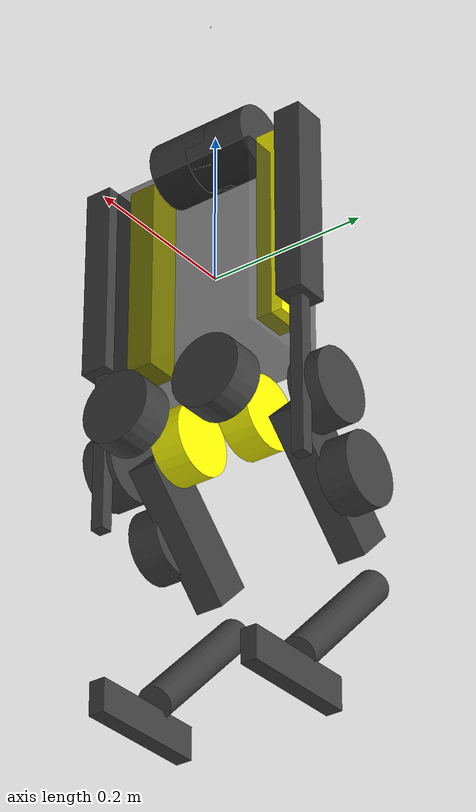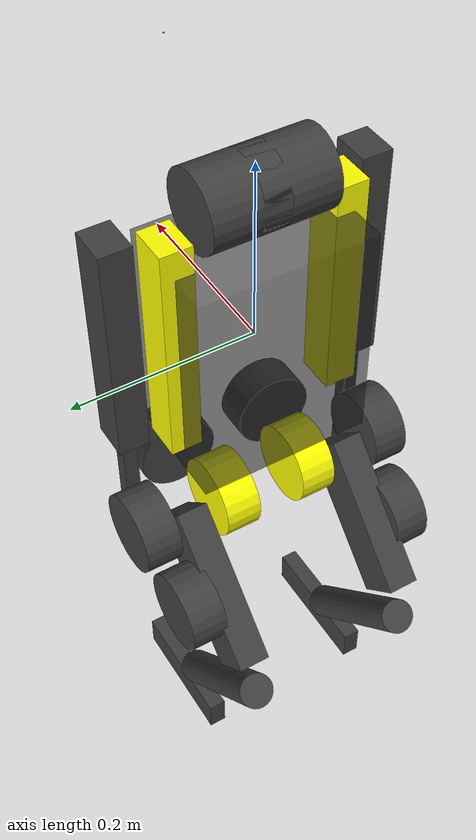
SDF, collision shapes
<sdf version="1.8">

    <model name='hector_v2'>
      <link name='base_link'>
        <inertial>
          <pose>2.630194634402946e-06 2.20585656671927e-05 4.29598456952481e-05 0 0 0</pose>
          <mass>5.7030000000000012</mass>
          <inertia>
            <ixx>0.046763409339870249</ixx>
            <ixy>1.194330878485007e-06</ixy>
            <ixz>-2.4024355602314572e-05</ixz>
            <iyy>0.037036939435384893</iyy>
            <iyz>-9.3345956514115385e-06</iyz>
            <izz>0.02488541982557952</izz>
          </inertia>
        </inertial>
        <collision name='base_link_fixed_joint_lump__trunk_collision'>
          <pose>0 0 0 0 0 0</pose>
          <geometry>
            <box>
              <size>0.125 0.19 0.248</size>
            </box>
          </geometry>
        </collision>
        <collision name='base_link_fixed_joint_lump__head_link_collision_1'>
          <pose>0.07000000000000001 0.0458 0.3 3.141592653589793 1.224646799147353e-16 -1.570796326794897</pose>
          <geometry>
            <box>
              <size>0.001 0.001 0.001</size>
            </box>
          </geometry>
        </collision>
        <collision name='base_link_fixed_joint_lump__imu_link_collision_2'>
          <pose>0 0 0 0 0 0</pose>
          <geometry>
            <box>
              <size>0.001 0.001 0.001</size>
            </box>
          </geometry>
          <surface>
            <contact>
              <ode/>
            </contact>
            <friction>
              <ode/>
            </friction>
          </surface>
        </collision>
        <collision name='base_link_fixed_joint_lump__nuc_link_collision_3'>
          <pose>-0.055 0.08 -0.055 0 0 3.141592653589793</pose>
          <geometry>
            <box>
              <size>0.001 0.001 0.001</size>
            </box>
          </geometry>
        </collision>
        <visual name='base_link_visual'>
          <pose>0 0 0 0 0 0</pose>
          <geometry>
            <box>
              <size>0.001 0.001 0.001</size>
            </box>
          </geometry>
        </visual>
        <visual name='base_link_fixed_joint_lump__trunk_visual_1'>
          <pose>0 0 0 0 0 0</pose>
          <geometry>
            <mesh>
              <scale>1 1 1</scale>
              <uri>file:///home/cl/CLionProjects/hector_gazebo/install/hector_gazebo/share/hector_gazebo/assets/models/meshes/body.stl</uri>
            </mesh>
          </geometry>
          <material>
            <diffuse>0.125 0.125 0.125 0.55</diffuse>
            <ambient>0.125 0.125 0.125 0.55</ambient>
          </material>
        </visual>
        <visual name='base_link_fixed_joint_lump__head_link_visual_2'>
          <pose>0.07000000000000001 0.0458 0.3 3.141592653589793 1.224646799147353e-16 -1.570796326794897</pose>
          <geometry>
            <mesh>
              <scale>0.001 0.001 0.001</scale>
              <uri>file:///home/cl/CLionProjects/hector_gazebo/install/hector_gazebo/share/hector_gazebo/assets/models/meshes/Head.STL</uri>
            </mesh>
          </geometry>
          <material>
            <diffuse>0.125 0.125 0.125 0.55</diffuse>
            <ambient>0.125 0.125 0.125 0.55</ambient>
          </material>
        </visual>
        <visual name='base_link_fixed_joint_lump__imu_link_visual_3'>
          <pose>0 0 0 0 0 0</pose>
          <geometry>
            <box>
              <size>0.001 0.001 0.001</size>
            </box>
          </geometry>
          <material>
            <diffuse>0.125 0.125 0.125 0.55</diffuse>
            <ambient>0.125 0.125 0.125 0.55</ambient>
          </material>
        </visual>
        <visual name='base_link_fixed_joint_lump__nuc_link_visual_4'>
          <pose>-0.055 0.08 -0.055 0 0 3.141592653589793</pose>
          <geometry>
            <mesh>
              <scale>1 1 1</scale>
              <uri>file:///home/cl/CLionProjects/hector_gazebo/install/hector_gazebo/share/hector_gazebo/assets/models/meshes/NUC_backpack.STL</uri>
            </mesh>
          </geometry>
          <material>
            <diffuse>0.125 0.125 0.125 0.55</diffuse>
            <ambient>0.125 0.125 0.125 0.55</ambient>
          </material>
        </visual>
        <sensor name='imu_sensor' type='imu'>
          <always_on>true</always_on>
          <update_rate>1000</update_rate>
          <visualize>true</visualize>
          <topic>/imu</topic>
          <imu>
            <angular_velocity>
              <x>
                <noise type='gaussian'>
                  <mean>0</mean>
                  <stddev>0.00020000000000000001</stddev>
                  <bias_mean>7.5000000000000002e-06</bias_mean>
                  <bias_stddev>7.9999999999999996e-07</bias_stddev>
                </noise>
              </x>
              <y>
                <noise type='gaussian'>
                  <mean>0</mean>
                  <stddev>0.00020000000000000001</stddev>
                  <bias_mean>7.5000000000000002e-06</bias_mean>
                  <bias_stddev>7.9999999999999996e-07</bias_stddev>
                </noise>
              </y>
              <z>
                <noise type='gaussian'>
                  <mean>0</mean>
                  <stddev>0.00020000000000000001</stddev>
                  <bias_mean>7.5000000000000002e-06</bias_mean>
                  <bias_stddev>7.9999999999999996e-07</bias_stddev>
                </noise>
              </z>
            </angular_velocity>
            <linear_acceleration>
              <x>
                <noise type='gaussian'>
                  <mean>0</mean>
                  <stddev>0.017000000000000001</stddev>
                  <bias_mean>0.10000000000000001</bias_mean>
                  <bias_stddev>0.001</bias_stddev>
                </noise>
              </x>
              <y>
                <noise type='gaussian'>
                  <mean>0</mean>
                  <stddev>0.017000000000000001</stddev>
                  <bias_mean>0.10000000000000001</bias_mean>
                  <bias_stddev>0.001</bias_stddev>
                </noise>
              </y>
              <z>
                <noise type='gaussian'>
                  <mean>0</mean>
                  <stddev>0.017000000000000001</stddev>
                  <bias_mean>0.10000000000000001</bias_mean>
                  <bias_stddev>0.001</bias_stddev>
                </noise>
              </z>
            </linear_acceleration>
          </imu>
          <plugin name='ignition::gazebo::systems::Imu' filename='libignition-gazebo-imu-system.so'/>
          <pose>0 0 0 0 -0 0</pose>
        </sensor>
      </link>
      <joint name='L_hip_yaw_joint' type='revolute'>
        <pose relative_to='base_link'>0 0.047 -0.1265 0 0 0</pose>
        <parent>base_link</parent>
        <child>L_hip_yaw_link</child>
        <axis>
          <xyz>0 0 1</xyz>
          <limit>
            <lower>-0.52359877559829882</lower>
            <upper>0.52359877559829882</upper>
            <effort>33.5</effort>
            <velocity>21</velocity>
          </limit>
          <dynamics>
            <damping>0.10000000000000001</damping>
            <friction>0</friction>
            <spring_reference>0</spring_reference>
            <spring_stiffness>0</spring_stiffness>
          </dynamics>
        </axis>
        <physics>
          <ode>
            <limit>
              <cfm>0</cfm>
              <erp>0.20000000000000001</erp>
            </limit>
          </ode>
        </physics>

      </joint>
      <link name='L_hip_yaw_link'>
        <pose relative_to='L_hip_yaw_joint'>0 0 0 0 0 0</pose>
        <inertial>
          <pose>0.06518811899313502 0.01056818306636156 -0.05876998627002288 0 0 0</pose>
          <mass>0.874</mass>
          <inertia>
            <ixx>0.00083962526042654414</ixx>
            <ixy>-0.00015524278014096099</ixy>
            <ixz>0.00041089241044942743</ixz>
            <iyy>0.001276880976027457</iyy>
            <iyz>0.0001318430083221968</iyz>
            <izz>0.001199172187542334</izz>
          </inertia>
        </inertial>
        <collision name='L_hip_yaw_link_collision'>
          <pose>0.015 0 -0.002 0 0 0</pose>
          <geometry>
            <box>
              <size>0.0001 0.0001 0.0001</size>
            </box>
          </geometry>
        </collision>
        <collision name='L_hip_yaw_link_fixed_joint_lump__L_hip_yaw_trans_link_collision_1'>
          <pose>0.079 0.015 -0.07049999999999999 0 1.570796326794897 0</pose>
          <geometry>
            <cylinder>
              <length>0.040000000000000001</length>
              <radius>0.044999999999999998</radius>
            </cylinder>
          </geometry>
        </collision>
        <visual name='L_hip_yaw_link_visual'>
          <pose>0 0 0.02 0 0 0</pose>
          <geometry>
            <mesh>
              <scale>1 1 1</scale>
              <uri>file:///home/cl/CLionProjects/hector_gazebo/install/hector_gazebo/share/hector_gazebo/assets/models/meshes/L_hip_yaw.STL</uri>
            </mesh>
          </geometry>
          <material>
            <diffuse>0.25 0.25 0.25 1</diffuse>
            <ambient>0.25 0.25 0.25 1</ambient>
          </material>
        </visual>
      </link>
      <joint name='L_hip_roll_joint' type='revolute'>
        <pose relative_to='L_hip_yaw_link'>0.0465 0.015 -0.07049999999999999 0 0 0</pose>
        <parent>L_hip_yaw_link</parent>
        <child>L_hip_roll_link</child>
        <axis>
          <xyz>1 0 0</xyz>
          <limit>
            <lower>-0.52359877559829882</lower>
            <upper>0.52359877559829882</upper>
            <effort>33.5</effort>
            <velocity>21</velocity>
          </limit>
          <dynamics>
            <damping>0.10000000000000001</damping>
            <friction>0</friction>
            <spring_reference>0</spring_reference>
            <spring_stiffness>0</spring_stiffness>
          </dynamics>
        </axis>
      </joint>
      <link name='L_hip_roll_link'>
        <pose relative_to='L_hip_roll_joint'>0 0 0 0 0 0</pose>
        <inertial>
          <pose>-0.05658471812080537 -0.01439187248322148 0 0 0 0</pose>
          <mass>0.745</mass>
          <inertia>
            <ixx>0.0004917181040828859</ixx>
            <ixy>-1.058686153322143e-05</ixy>
            <ixz>0</ixz>
            <iyy>0.00073156397147080502</iyy>
            <iyz>6.2143879783576284e-20</iyz>
            <izz>0.00059356457555369106</izz>
          </inertia>
        </inertial>
        <collision name='L_hip_roll_link_collision'>
          <pose>-0.1 0 0 0 0 0</pose>
          <geometry>
            <box>
              <size>1e-05 1e-05 1e-05</size>
            </box>
          </geometry>
        </collision>
        <collision name='L_hip_roll_link_fixed_joint_lump__L_hip_roll_trans_link_collision_1'>
          <pose>-0.06 -0.015 0 -1.570796326794896 0 0</pose>
          <geometry>
            <cylinder>
              <length>0.040000000000000001</length>
              <radius>0.044999999999999998</radius>
            </cylinder>
          </geometry>
        </collision>
        <visual name='L_hip_roll_link_visual'>
          <pose>0 0 0 0 0 0</pose>
          <geometry>
            <mesh>
              <scale>1 1 1</scale>
              <uri>file:///home/cl/CLionProjects/hector_gazebo/install/hector_gazebo/share/hector_gazebo/assets/models/meshes/L_hip_roll.STL</uri>
            </mesh>
          </geometry>
          <material>
            <diffuse>1 1 0 1</diffuse>
            <ambient>1 1 0 1</ambient>
          </material>
        </visual>
      </link>
      <joint name='L_hip_pitch_joint' type='revolute'>
        <pose relative_to='L_hip_roll_link'>-0.06 0.018 0 0 0.7853981633974484 0</pose>
        <parent>L_hip_roll_link</parent>
        <child>L_hip_pitch_link</child>
        <axis>
          <xyz>0 1 0</xyz>
          <limit>
            <lower>-3.1400000000000001</lower>
            <upper>3.1400000000000001</upper>
            <effort>33.5</effort>
            <velocity>21</velocity>
          </limit>
          <dynamics>
            <spring_reference>0</spring_reference>
            <spring_stiffness>0</spring_stiffness>
          </dynamics>
        </axis>
      </joint>
      <link name='L_hip_pitch_link'>
        <pose relative_to='L_hip_pitch_joint'>0 0 0 0 0 0</pose>
        <inertial>
          <pose>-4.859629248197734e-05 0.0442364675592173 -0.05928275695159629 0 0 0</pose>
          <mass>1.9419999999999999</mass>
          <inertia>
            <ixx>0.0094485760881047372</ixx>
            <ixy>-2.2957860494335731e-06</ixy>
            <ixz>-2.0605848534500521e-06</ixz>
            <iyy>0.0096199078252887753</iyy>
            <iyz>-0.00090346150390731121</iyz>
            <izz>0.002157651836318949</izz>
          </inertia>
        </inertial>
        <collision name='L_hip_pitch_link_collision'>
          <pose>0 0.0175 -0.09 0 0 0</pose>
          <geometry>
            <box>
              <size>0.06 0.035 0.18</size>
            </box>
          </geometry>
        </collision>
        <collision name='L_hip_pitch_link_fixed_joint_lump__L_hip_pitch1_trans_link_collision_1'>
          <pose>0 0.0625 0 -1.570796326794896 0 0</pose>
          <geometry>
            <cylinder>
              <length>0.040000000000000001</length>
              <radius>0.044999999999999998</radius>
            </cylinder>
          </geometry>
        </collision>
        <collision name='L_hip_pitch_link_fixed_joint_lump__L_hip_pitch2_trans_link_collision_2'>
          <pose>0 0.05 -0.097 -1.570796326794896 0 0</pose>
          <geometry>
            <cylinder>
              <length>0.040000000000000001</length>
              <radius>0.044999999999999998</radius>
            </cylinder>
          </geometry>
        </collision>
        <visual name='L_hip_pitch_link_visual'>
          <pose>0 0 0 0 0 0</pose>
          <geometry>
            <mesh>
              <scale>1 1 1</scale>
              <uri>file:///home/cl/CLionProjects/hector_gazebo/install/hector_gazebo/share/hector_gazebo/assets/models/meshes/hip_pitch_combined_L2.stl</uri>
            </mesh>
          </geometry>
          <material>
            <diffuse>0.25 0.25 0.25 1</diffuse>
            <ambient>0.25 0.25 0.25 1</ambient>
          </material>
        </visual>
      </link>
      <joint name='L_knee_joint' type='revolute'>
        <pose relative_to='L_hip_pitch_link'>0 0 -0.22 0 -1.570796326794897 0</pose>
        <parent>L_hip_pitch_link</parent>
        <child>L_knee_link</child>
        <axis>
          <xyz>0 1 0</xyz>
          <limit>
            <lower>-3.1400000000000001</lower>
            <upper>3.1400000000000001</upper>
            <effort>33.5</effort>
            <velocity>21</velocity>
          </limit>
          <dynamics>
            <spring_reference>0</spring_reference>
            <spring_stiffness>0</spring_stiffness>
          </dynamics>
        </axis>
      </joint>
      <link name='L_knee_link'>
        <pose relative_to='L_knee_joint'>0 0 0 0 0 0</pose>
        <inertial>
          <pose>0 0.020417 -0.1141 0 0 0</pose>
          <mass>0.30299999999999999</mass>
          <inertia>
            <ixx>0.0019109999999999999</ixx>
            <ixy>0</ixy>
            <ixz>0</ixz>
            <iyy>0.0019103799999999999</iyy>
            <iyz>0</iyz>
            <izz>6.8351999999999999e-05</izz>
          </inertia>
        </inertial>
        <collision name='L_knee_link_collision'>
          <pose>0 0.015 -0.11 0 0 0</pose>
          <geometry>
            <cylinder>
              <length>0.20000000000000001</length>
              <radius>0.02</radius>
            </cylinder>
          </geometry>
        </collision>
        <visual name='L_knee_link_visual'>
          <pose>0 0 0 0 0 0</pose>
          <geometry>
            <mesh>
              <scale>1 1 1</scale>
              <uri>file:///home/cl/CLionProjects/hector_gazebo/install/hector_gazebo/share/hector_gazebo/assets/models/meshes/knee_combined_L.stl</uri>
            </mesh>
          </geometry>
          <material>
            <diffuse>0.25 0.25 0.25 1</diffuse>
            <ambient>0.25 0.25 0.25 1</ambient>
          </material>
        </visual>
      </link>
      <joint name='L_ankle_joint' type='revolute'>
        <pose relative_to='L_knee_link'>0 0 -0.22 0 0.7853981633974484 0</pose>
        <parent>L_knee_link</parent>
        <child>L_ankle_link</child>
        <axis>
          <xyz>0 1 0</xyz>
          <limit>
            <lower>-1.3999999999999999</lower>
            <upper>1.3999999999999999</upper>
            <effort>33.5</effort>
            <velocity>21</velocity>
          </limit>
          <dynamics>
            <spring_reference>0</spring_reference>
            <spring_stiffness>0</spring_stiffness>
          </dynamics>
        </axis>
      </joint>
      <link name='L_ankle_link'>
        <sensor name='L_ankle_link' type='contact'>
          <contact>
            <collision>L_ankle_link_fixed_joint_lump__L_foot_collision_collision</collision>
          </contact>
          <always_on>true</always_on>
          <update_rate>30</update_rate>
        </sensor>
        <pose relative_to='L_ankle_joint'>0 0 0 0 0 0</pose>
        <inertial>
          <pose>0.01056406352171882 0.01794967772069127 -0.01712868752919197 0 0 0</pose>
          <mass>0.21410000000000001</mass>
          <inertia>
            <ixx>5.7450544578958412e-05</ixx>
            <ixy>1.015328456170129e-07</ixy>
            <ixz>7.5827309849602889e-08</ixz>
            <iyy>0.00029091549929593179</iyy>
            <iyz>1.033186274395053e-07</iyz>
            <izz>0.00024960237560049892</izz>
          </inertia>
        </inertial>
        <collision name='L_ankle_link_fixed_joint_lump__L_foot_collision_collision'>
          <pose>0.01 0.0194 -0.02 0 0 0</pose>
          <geometry>
            <box>
              <size>0.15 0.02 0.04</size>
            </box>
          </geometry>
        </collision>
        <visual name='L_ankle_link_visual'>
          <pose>0 0 0 0 0 0</pose>
          <geometry>
            <mesh>
              <scale>1 1 1</scale>
              <uri>file:///home/cl/CLionProjects/hector_gazebo/install/hector_gazebo/share/hector_gazebo/assets/models/meshes/foot_L2.stl</uri>
            </mesh>
          </geometry>
          <material>
            <diffuse>0.25 0.25 0.25 1</diffuse>
            <ambient>0.25 0.25 0.25 1</ambient>
          </material>
        </visual>
        <visual name='L_ankle_link_fixed_joint_lump__L_leg_EE_link_visual_1'>
          <pose>0 0.0194 -0.04 0 0 0</pose>
          <geometry>
            <sphere>
              <radius>0.01</radius>
            </sphere>
          </geometry>
          <material>
            <diffuse>0.25 0.25 0.25 1</diffuse>
            <ambient>0.25 0.25 0.25 1</ambient>
          </material>
        </visual>

      </link>
      <joint name='L_shoulder_yaw_joint' type='revolute'>
        <pose relative_to='base_link'>0 0.047 0.1725 0 0 0</pose>
        <parent>base_link</parent>
        <child>L_shoulder_yaw_link</child>
        <axis>
          <xyz>0 0 1</xyz>
          <limit>
            <lower>-1.3999999999999999</lower>
            <upper>1.5708</upper>
            <effort>17</effort>
            <velocity>33</velocity>
          </limit>
          <dynamics>
            <damping>0.10000000000000001</damping>
            <friction>0</friction>
            <spring_reference>0</spring_reference>
            <spring_stiffness>0</spring_stiffness>
          </dynamics>
        </axis>
      </joint>
      <link name='L_shoulder_yaw_link'>
        <pose relative_to='L_shoulder_yaw_joint'>0 0 0 0 0 0</pose>
        <inertial>
          <pose>0.00071 0.02838 0.04835 0 0 1.570796</pose>
          <mass>0.43559999999999999</mass>
          <inertia>
            <ixx>0.00042999999999999999</ixx>
            <ixy>0</ixy>
            <ixz>0</ixz>
            <iyy>0.00035</iyy>
            <iyz>0</iyz>
            <izz>0.00027</izz>
          </inertia>
        </inertial>
        <collision name='L_shoulder_yaw_link_collision'>
          <pose>0 -0.021 0 1.570796326794896 0 0</pose>
          <geometry>
            <cylinder>
              <length>0.080000000000000002</length>
              <radius>0.041000000000000002</radius>
            </cylinder>
          </geometry>
        </collision>
        <visual name='L_shoulder_yaw_link_visual'>
          <pose>0 0 -0.062 0 0 0</pose>
          <geometry>
            <mesh>
              <scale>1 1 1</scale>
              <uri>file:///home/cl/CLionProjects/hector_gazebo/install/hector_gazebo/share/hector_gazebo/assets/models/meshes/hector_arm/ShoulderYaw_L.stl</uri>
            </mesh>
          </geometry>
          <material>
            <diffuse>0.25 0.25 0.25 1</diffuse>
            <ambient>0.25 0.25 0.25 1</ambient>
          </material>
        </visual>
      </link>
      <joint name='L_shoulder_pitch_joint' type='revolute'>
        <pose relative_to='L_shoulder_yaw_link'>0 0.045 -0.018 0 0 0</pose>
        <parent>L_shoulder_yaw_link</parent>
        <child>L_shoulder_pitch_link</child>
        <axis>
          <xyz>0 1 0</xyz>
          <limit>
            <lower>-3.1400000000000001</lower>
            <upper>1.5708</upper>
            <effort>17</effort>
            <velocity>33</velocity>
          </limit>
          <dynamics>
            <damping>0.10000000000000001</damping>
            <friction>0</friction>
            <spring_reference>0</spring_reference>
            <spring_stiffness>0</spring_stiffness>
          </dynamics>
        </axis>
      </joint>
      <link name='L_shoulder_pitch_link'>
        <pose relative_to='L_shoulder_pitch_joint'>0 0 0 0 0 0</pose>
        <inertial>
          <pose>-0.0294 0.04541 0.0008899999999999999 0 0 0</pose>
          <mass>0.432</mass>
          <inertia>
            <ixx>0.00042000000000000002</ixx>
            <ixy>-2.0000000000000002e-05</ixy>
            <ixz>0</ixz>
            <iyy>0.00027</iyy>
            <iyz>0</iyz>
            <izz>0.00033</izz>
          </inertia>
        </inertial>
        <collision name='L_shoulder_pitch_link_collision'>
          <pose>0 0 -0.125 0 1.570796326794897 0</pose>
          <geometry>
            <box>
              <size>0.25 0.034 0.043</size>
            </box>
          </geometry>
        </collision>
        <visual name='L_shoulder_pitch_link_visual'>
          <pose>0 0 0 0 0 0</pose>
          <geometry>
            <mesh>
              <scale>1 1 1</scale>
              <uri>file:///home/cl/CLionProjects/hector_gazebo/install/hector_gazebo/share/hector_gazebo/assets/models/meshes/hector_arm/ShoulderPitch_L.stl</uri>
            </mesh>
          </geometry>
          <material>
            <diffuse>1 1 0 1</diffuse>
            <ambient>1 1 0 1</ambient>
          </material>
        </visual>
      </link>
      <joint name='L_shoulder_roll_joint' type='revolute'>
        <pose relative_to='L_shoulder_pitch_link'>-0.0135 0.045 0 0 0 0</pose>
        <parent>L_shoulder_pitch_link</parent>
        <child>L_shoulder_roll_link</child>
        <axis>
          <xyz>1 0 0</xyz>
          <limit>
            <lower>-1.3999999999999999</lower>
            <upper>1.3999999999999999</upper>
            <effort>17</effort>
            <velocity>33</velocity>
          </limit>
          <dynamics>
            <damping>0.10000000000000001</damping>
            <friction>0</friction>
            <spring_reference>0</spring_reference>
            <spring_stiffness>0</spring_stiffness>
          </dynamics>
        </axis>
      </joint>
      <link name='L_shoulder_roll_link'>
        <pose relative_to='L_shoulder_roll_joint'>0 0 0 0 0 0</pose>
        <inertial>
          <pose>0.04492 0.01006 -0.03218 0 0 0</pose>
          <mass>0.66483999999999999</mass>
          <inertia>
            <ixx>0.0031800000000000001</ixx>
            <ixy>1.0000000000000001e-05</ixy>
            <ixz>0</ixz>
            <iyy>0.0032499999999999999</iyy>
            <iyz>0.00036999999999999999</iyz>
            <izz>0.00048999999999999998</izz>
          </inertia>
        </inertial>
        <collision name='L_shoulder_roll_link_collision'>
          <pose>0.04 0 -0.125 0 1.570796326794897 0</pose>
          <geometry>
            <box>
              <size>0.25 0.034 0.043</size>
            </box>
          </geometry>
        </collision>
        <visual name='L_shoulder_roll_link_visual'>
          <pose>0 0 0 0 0 0</pose>
          <geometry>
            <mesh>
              <scale>1 1 1</scale>
              <uri>file:///home/cl/CLionProjects/hector_gazebo/install/hector_gazebo/share/hector_gazebo/assets/models/meshes/hector_arm/UpperArmRoll_L.stl</uri>
            </mesh>
          </geometry>
          <material>
            <diffuse>0.25 0.25 0.25 1</diffuse>
            <ambient>0.25 0.25 0.25 1</ambient>
          </material>
        </visual>
      </link>
      <joint name='L_elbow_joint' type='revolute'>
        <pose relative_to='L_shoulder_roll_link'>0.04 0 -0.2 0 0 0</pose>
        <parent>L_shoulder_roll_link</parent>
        <child>L_elbow_link</child>
        <axis>
          <xyz>0 1 0</xyz>
          <limit>
            <lower>-2.7799999999999998</lower>
            <upper>2.6299999999999999</upper>
            <effort>24.09</effort>
            <velocity>23.289999999999999</velocity>
          </limit>
          <dynamics>
            <damping>0.10000000000000001</damping>
            <friction>0</friction>
            <spring_reference>0</spring_reference>
            <spring_stiffness>0</spring_stiffness>
          </dynamics>
        </axis>
      </joint>
      <link name='L_elbow_link'>
        <pose relative_to='L_elbow_joint'>0 0 0 0 0 0</pose>
        <inertial>
          <pose>0 7.994933502216595e-05 -0.1172724255858138 0 0 0</pose>
          <mass>0.15790000000000001</mass>
          <inertia>
            <ixx>0.0012907848195005951</ixx>
            <ixy>0</ixy>
            <ixz>0</ixz>
            <iyy>0.001300784818861</iyy>
            <iyz>-6.6182059531364658e-10</iyz>
            <izz>2.0100000639594681e-05</izz>
          </inertia>
        </inertial>
        <collision name='L_elbow_link_collision'>
          <pose>0 0 -0.125 0 1.570796326794897 0</pose>
          <geometry>
            <box>
              <size>0.25 0.016 0.016</size>
            </box>
          </geometry>
        </collision>
        <visual name='L_elbow_link_visual'>
          <pose>0 0 0 0 0 0</pose>
          <geometry>
            <mesh>
              <scale>1 1 1</scale>
              <uri>file:///home/cl/CLionProjects/hector_gazebo/install/hector_gazebo/share/hector_gazebo/assets/models/meshes/hector_arm/ForeArmPitch.stl</uri>
            </mesh>
          </geometry>
          <material>
            <diffuse>0.25 0.25 0.25 1</diffuse>
            <ambient>0.25 0.25 0.25 1</ambient>
          </material>
        </visual>
        <visual name='L_elbow_link_fixed_joint_lump__L_arm_EE_link_visual_1'>
          <pose>0 0 -0.2 0 0 0</pose>
          <geometry>
            <sphere>
              <radius>0.01</radius>
            </sphere>
          </geometry>
          <material>
            <diffuse>0.25 0.25 0.25 1</diffuse>
            <ambient>0.25 0.25 0.25 1</ambient>
          </material>
        </visual>
      </link>
      <joint name='R_hip_yaw_joint' type='revolute'>
        <pose relative_to='base_link'>0 -0.047 -0.1265 0 0 0</pose>
        <parent>base_link</parent>
        <child>R_hip_yaw_link</child>
        <axis>
          <xyz>0 0 1</xyz>
          <limit>
            <lower>-0.52359877559829882</lower>
            <upper>0.52359877559829882</upper>
            <effort>33.5</effort>
            <velocity>21</velocity>
          </limit>
          <dynamics>
            <damping>0.10000000000000001</damping>
            <friction>0</friction>
            <spring_reference>0</spring_reference>
            <spring_stiffness>0</spring_stiffness>
          </dynamics>
        </axis>
      </joint>
      <link name='R_hip_yaw_link'>
        <pose relative_to='R_hip_yaw_joint'>0 0 0 0 0 0</pose>
        <inertial>
          <pose>0.06518811899313502 -0.01174302974828375 -0.05876998627002288 0 0 0</pose>
          <mass>0.874</mass>
          <inertia>
            <ixx>0.00081671575012906127</ixx>
            <ixy>0.0001140888994929061</ixy>
            <ixz>0.00041089241044942743</ixz>
            <iyy>0.001276880976027457</iyy>
            <iyz>-9.6892259412356837e-05</iyz>
            <izz>0.0011762626772448511</izz>
          </inertia>
        </inertial>
        <collision name='R_hip_yaw_link_collision'>
          <pose>0.015 0 -0.002 0 0 0</pose>
          <geometry>
            <box>
              <size>0.0001 0.0001 0.0001</size>
            </box>
          </geometry>
        </collision>
        <collision name='R_hip_yaw_link_fixed_joint_lump__R_hip_yaw_trans_link_collision_1'>
          <pose>0.079 -0.015 -0.07049999999999999 0 1.570796326794897 0</pose>
          <geometry>
            <cylinder>
              <length>0.040000000000000001</length>
              <radius>0.044999999999999998</radius>
            </cylinder>
          </geometry>
        </collision>
        <visual name='R_hip_yaw_link_visual'>
          <pose>0 0 0.02 0 0 0</pose>
          <geometry>
            <mesh>
              <scale>1 1 1</scale>
              <uri>file:///home/cl/CLionProjects/hector_gazebo/install/hector_gazebo/share/hector_gazebo/assets/models/meshes/R_hip_yaw.STL</uri>
            </mesh>
          </geometry>
          <material>
            <diffuse>0.25 0.25 0.25 1</diffuse>
            <ambient>0.25 0.25 0.25 1</ambient>
          </material>
        </visual>
      </link>
      <joint name='R_hip_roll_joint' type='revolute'>
        <pose relative_to='R_hip_yaw_link'>0.0465 -0.015 -0.07049999999999999 0 0 0</pose>
        <parent>R_hip_yaw_link</parent>
        <child>R_hip_roll_link</child>
        <axis>
          <xyz>1 0 0</xyz>
          <limit>
            <lower>-0.52359877559829882</lower>
            <upper>0.52359877559829882</upper>
            <effort>33.5</effort>
            <velocity>21</velocity>
          </limit>
          <dynamics>
            <damping>0.10000000000000001</damping>
            <friction>0</friction>
            <spring_reference>0</spring_reference>
            <spring_stiffness>0</spring_stiffness>
          </dynamics>
        </axis>
      </joint>
      <link name='R_hip_roll_link'>
        <pose relative_to='R_hip_roll_joint'>0 0 0 0 0 0</pose>
        <inertial>
          <pose>-0.05658471812080537 0.01178262416107383 0 0 0 0</pose>
          <mass>0.745</mass>
          <inertia>
            <ixx>0.00054259844636476507</ixx>
            <ixy>5.6011135111073821e-05</ixy>
            <ixz>0</ixz>
            <iyy>0.00073156397147080502</iyy>
            <iyz>6.2143879783576284e-20</iyz>
            <izz>0.00064444491783557023</izz>
          </inertia>
        </inertial>
        <collision name='R_hip_roll_link_collision'>
          <pose>-0.1 0 0 0 0 0</pose>
          <geometry>
            <box>
              <size>1e-05 1e-05 1e-05</size>
            </box>
          </geometry>
        </collision>
        <collision name='R_hip_roll_link_fixed_joint_lump__R_hip_roll_trans_link_collision_1'>
          <pose>-0.06 0.015 0 -1.570796326794896 0 0</pose>
          <geometry>
            <cylinder>
              <length>0.040000000000000001</length>
              <radius>0.044999999999999998</radius>
            </cylinder>
          </geometry>
        </collision>
        <visual name='R_hip_roll_link_visual'>
          <pose>0 0 0 0 0 0</pose>
          <geometry>
            <mesh>
              <scale>1 1 1</scale>
              <uri>file:///home/cl/CLionProjects/hector_gazebo/install/hector_gazebo/share/hector_gazebo/assets/models/meshes/R_hip_roll.STL</uri>
            </mesh>
          </geometry>
          <material>
            <diffuse>1 1 0 1</diffuse>
            <ambient>1 1 0 1</ambient>
          </material>
        </visual>
      </link>
      <joint name='R_hip_pitch_joint' type='revolute'>
        <pose relative_to='R_hip_roll_link'>-0.06 -0.018 0 0 0.7853981633974484 0</pose>
        <parent>R_hip_roll_link</parent>
        <child>R_hip_pitch_link</child>
        <axis>
          <xyz>0 1 0</xyz>
          <limit>
            <lower>-3.1400000000000001</lower>
            <upper>3.1400000000000001</upper>
            <effort>33.5</effort>
            <velocity>21</velocity>
          </limit>
          <dynamics>
            <spring_reference>0</spring_reference>
            <spring_stiffness>0</spring_stiffness>
          </dynamics>
        </axis>
      </joint>
      <link name='R_hip_pitch_link'>
        <pose relative_to='R_hip_pitch_joint'>0 0 0 0 0 0</pose>
        <inertial>
          <pose>-4.859629248197734e-05 -0.0442364675592173 -0.05928275695159629 0 0 0</pose>
          <mass>1.9419999999999999</mass>
          <inertia>
            <ixx>0.0094485760881047372</ixx>
            <ixy>2.2957860494335731e-06</ixy>
            <ixz>-2.0605848534500521e-06</ixz>
            <iyy>0.0096199078252887753</iyy>
            <iyz>0.00090346150390731121</iyz>
            <izz>0.002157651836318949</izz>
          </inertia>
        </inertial>
        <collision name='R_hip_pitch_link_collision'>
          <pose>0 -0.0175 -0.09 0 0 0</pose>
          <geometry>
            <box>
              <size>0.06 0.035 0.18</size>
            </box>
          </geometry>
        </collision>
        <collision name='R_hip_pitch_link_fixed_joint_lump__R_hip_pitch1_trans_link_collision_1'>
          <pose>0 -0.0625 0 -1.570796326794896 0 0</pose>
          <geometry>
            <cylinder>
              <length>0.040000000000000001</length>
              <radius>0.044999999999999998</radius>
            </cylinder>
          </geometry>
        </collision>
        <collision name='R_hip_pitch_link_fixed_joint_lump__R_hip_pitch2_trans_link_collision_2'>
          <pose>0 -0.05 -0.097 -1.570796326794896 0 0</pose>
          <geometry>
            <cylinder>
              <length>0.040000000000000001</length>
              <radius>0.044999999999999998</radius>
            </cylinder>
          </geometry>
        </collision>
        <visual name='R_hip_pitch_link_visual'>
          <pose>0 0 0 0 0 0</pose>
          <geometry>
            <mesh>
              <scale>1 1 1</scale>
              <uri>file:///home/cl/CLionProjects/hector_gazebo/install/hector_gazebo/share/hector_gazebo/assets/models/meshes/hip_pitch_combined_R2.stl</uri>
            </mesh>
          </geometry>
          <material>
            <diffuse>0.25 0.25 0.25 1</diffuse>
            <ambient>0.25 0.25 0.25 1</ambient>
          </material>
        </visual>
      </link>
      <joint name='R_knee_joint' type='revolute'>
        <pose relative_to='R_hip_pitch_link'>0 0 -0.22 0 -1.570796326794897 0</pose>
        <parent>R_hip_pitch_link</parent>
        <child>R_knee_link</child>
        <axis>
          <xyz>0 1 0</xyz>
          <limit>
            <lower>-3.1400000000000001</lower>
            <upper>3.1400000000000001</upper>
            <effort>33.5</effort>
            <velocity>21</velocity>
          </limit>
          <dynamics>
            <spring_reference>0</spring_reference>
            <spring_stiffness>0</spring_stiffness>
          </dynamics>
        </axis>
      </joint>
      <link name='R_knee_link'>
        <pose relative_to='R_knee_joint'>0 0 0 0 0 0</pose>
        <inertial>
          <pose>0 -0.020417 -0.1141 0 0 0</pose>
          <mass>0.30299999999999999</mass>
          <inertia>
            <ixx>0.0019109999999999999</ixx>
            <ixy>0</ixy>
            <ixz>0</ixz>
            <iyy>0.0019103799999999999</iyy>
            <iyz>0</iyz>
            <izz>6.8351999999999999e-05</izz>
          </inertia>
        </inertial>
        <collision name='R_knee_link_collision'>
          <pose>0 -0.015 -0.11 0 0 0</pose>
          <geometry>
            <cylinder>
              <length>0.20000000000000001</length>
              <radius>0.02</radius>
            </cylinder>
          </geometry>
        </collision>
        <visual name='R_knee_link_visual'>
          <pose>0 0 0 0 0 0</pose>
          <geometry>
            <mesh>
              <scale>1 1 1</scale>
              <uri>file:///home/cl/CLionProjects/hector_gazebo/install/hector_gazebo/share/hector_gazebo/assets/models/meshes/knee_combined_R.stl</uri>
            </mesh>
          </geometry>
          <material>
            <diffuse>0.25 0.25 0.25 1</diffuse>
            <ambient>0.25 0.25 0.25 1</ambient>
          </material>
        </visual>
      </link>
      <joint name='R_ankle_joint' type='revolute'>
        <pose relative_to='R_knee_link'>0 0 -0.22 0 0.7853981633974484 0</pose>
        <parent>R_knee_link</parent>
        <child>R_ankle_link</child>
        <axis>
          <xyz>0 1 0</xyz>
          <limit>
            <lower>-1.3999999999999999</lower>
            <upper>1.3999999999999999</upper>
            <effort>33.5</effort>
            <velocity>21</velocity>
          </limit>
          <dynamics>
            <spring_reference>0</spring_reference>
            <spring_stiffness>0</spring_stiffness>
          </dynamics>
        </axis>
      </joint>
      <link name='R_ankle_link'>
        <pose relative_to='R_ankle_joint'>0 0 0 0 0 0</pose>
        <inertial>
          <pose>0.01056406352171882 -0.01794967772069127 -0.01712868752919197 0 0 0</pose>
          <mass>0.21410000000000001</mass>
          <inertia>
            <ixx>5.7450544578958412e-05</ixx>
            <ixy>9.8467154382991936e-08</ixy>
            <ixz>7.5827309849602889e-08</ixz>
            <iyy>0.00029091549929593179</iyy>
            <iyz>9.6681372560485979e-08</iyz>
            <izz>0.00024960237560049892</izz>
          </inertia>
        </inertial>
        <collision name='R_ankle_link_fixed_joint_lump__R_foot_collision_collision'>
          <pose>0.01 -0.0194 -0.02 0 0 0</pose>
          <geometry>
            <box>
              <size>0.15 0.02 0.04</size>
            </box>
          </geometry>
        </collision>
        <visual name='R_ankle_link_visual'>
          <pose>0 0 0 0 0 0</pose>
          <geometry>
            <mesh>
              <scale>1 1 1</scale>
              <uri>file:///home/cl/CLionProjects/hector_gazebo/install/hector_gazebo/share/hector_gazebo/assets/models/meshes/foot_R2.stl</uri>
            </mesh>
          </geometry>
          <material>
            <diffuse>0.25 0.25 0.25 1</diffuse>
            <ambient>0.25 0.25 0.25 1</ambient>
          </material>
        </visual>
        <visual name='R_ankle_link_fixed_joint_lump__R_leg_EE_link_visual_1'>
          <pose>0 -0.0194 -0.04 0 0 0</pose>
          <geometry>
            <sphere>
              <radius>0.01</radius>
            </sphere>
          </geometry>
          <material>
            <diffuse>0.25 0.25 0.25 1</diffuse>
            <ambient>0.25 0.25 0.25 1</ambient>
          </material>
        </visual>

      </link>

      <joint name='R_shoulder_yaw_joint' type='revolute'>
        <pose relative_to='base_link'>0 -0.047 0.1725 0 0 0</pose>
        <parent>base_link</parent>
        <child>R_shoulder_yaw_link</child>
        <axis>
          <xyz>0 0 1</xyz>
          <limit>
            <lower>-1.5708</lower>
            <upper>1.3999999999999999</upper>
            <effort>17</effort>
            <velocity>33</velocity>
          </limit>
          <dynamics>
            <damping>0.10000000000000001</damping>
            <friction>0</friction>
            <spring_reference>0</spring_reference>
            <spring_stiffness>0</spring_stiffness>
          </dynamics>
        </axis>
      </joint>
      <link name='R_shoulder_yaw_link'>
        <pose relative_to='R_shoulder_yaw_joint'>0 0 0 0 0 0</pose>
        <inertial>
          <pose>0.00071 -0.02838 0.04835 0 0 1.570796</pose>
          <mass>0.43559999999999999</mass>
          <inertia>
            <ixx>0.00042999999999999999</ixx>
            <ixy>0</ixy>
            <ixz>0</ixz>
            <iyy>0.00035</iyy>
            <iyz>0</iyz>
            <izz>0.00027</izz>
          </inertia>
        </inertial>
        <collision name='R_shoulder_yaw_link_collision'>
          <pose>0 0.021 0 1.570796326794896 0 0</pose>
          <geometry>
            <cylinder>
              <length>0.080000000000000002</length>
              <radius>0.041000000000000002</radius>
            </cylinder>
          </geometry>
        </collision>
        <visual name='R_shoulder_yaw_link_visual'>
          <pose>0 0 -0.062 0 0 0</pose>
          <geometry>
            <mesh>
              <scale>1 1 1</scale>
              <uri>file:///home/cl/CLionProjects/hector_gazebo/install/hector_gazebo/share/hector_gazebo/assets/models/meshes/hector_arm/ShoulderYaw_R.stl</uri>
            </mesh>
          </geometry>
          <material>
            <diffuse>0.25 0.25 0.25 1</diffuse>
            <ambient>0.25 0.25 0.25 1</ambient>
          </material>
        </visual>
      </link>
      <joint name='R_shoulder_pitch_joint' type='revolute'>
        <pose relative_to='R_shoulder_yaw_link'>0 -0.045 -0.018 0 0 0</pose>
        <parent>R_shoulder_yaw_link</parent>
        <child>R_shoulder_pitch_link</child>
        <axis>
          <xyz>0 1 0</xyz>
          <limit>
            <lower>-3.1400000000000001</lower>
            <upper>1.5708</upper>
            <effort>17</effort>
            <velocity>33</velocity>
          </limit>
          <dynamics>
            <damping>0.10000000000000001</damping>
            <friction>0</friction>
            <spring_reference>0</spring_reference>
            <spring_stiffness>0</spring_stiffness>
          </dynamics>
        </axis>
      </joint>
      <link name='R_shoulder_pitch_link'>
        <pose relative_to='R_shoulder_pitch_joint'>0 0 0 0 0 0</pose>
        <inertial>
          <pose>-0.0294 -0.04541 0.0008899999999999999 0 0 0</pose>
          <mass>0.432</mass>
          <inertia>
            <ixx>0.00042000000000000002</ixx>
            <ixy>2.0000000000000002e-05</ixy>
            <ixz>0</ixz>
            <iyy>0.00027</iyy>
            <iyz>0</iyz>
            <izz>0.00033</izz>
          </inertia>
        </inertial>
        <collision name='R_shoulder_pitch_link_collision'>
          <pose>0 0 -0.125 0 1.570796326794897 0</pose>
          <geometry>
            <box>
              <size>0.25 0.034 0.043</size>
            </box>
          </geometry>
        </collision>
        <visual name='R_shoulder_pitch_link_visual'>
          <pose>0 0 0 0 0 0</pose>
          <geometry>
            <mesh>
              <scale>1 1 1</scale>
              <uri>file:///home/cl/CLionProjects/hector_gazebo/install/hector_gazebo/share/hector_gazebo/assets/models/meshes/hector_arm/ShoulderPitch_R.stl</uri>
            </mesh>
          </geometry>
          <material>
            <diffuse>1 1 0 1</diffuse>
            <ambient>1 1 0 1</ambient>
          </material>
        </visual>
      </link>
      <joint name='R_shoulder_roll_joint' type='revolute'>
        <pose relative_to='R_shoulder_pitch_link'>-0.0135 -0.045 0 0 0 0</pose>
        <parent>R_shoulder_pitch_link</parent>
        <child>R_shoulder_roll_link</child>
        <axis>
          <xyz>1 0 0</xyz>
          <limit>
            <lower>-1.3999999999999999</lower>
            <upper>1.3999999999999999</upper>
            <effort>17</effort>
            <velocity>33</velocity>
          </limit>
          <dynamics>
            <damping>0.10000000000000001</damping>
            <friction>0</friction>
            <spring_reference>0</spring_reference>
            <spring_stiffness>0</spring_stiffness>
          </dynamics>
        </axis>
      </joint>
      <link name='R_shoulder_roll_link'>
        <pose relative_to='R_shoulder_roll_joint'>0 0 0 0 0 0</pose>
        <inertial>
          <pose>0.04492 -0.01006 -0.03218 0 0 0</pose>
          <mass>0.66483999999999999</mass>
          <inertia>
            <ixx>0.0031800000000000001</ixx>
            <ixy>-1.0000000000000001e-05</ixy>
            <ixz>0</ixz>
            <iyy>0.0032499999999999999</iyy>
            <iyz>-0.00036999999999999999</iyz>
            <izz>0.00048999999999999998</izz>
          </inertia>
        </inertial>
        <collision name='R_shoulder_roll_link_collision'>
          <pose>0.04 0 -0.125 0 1.570796326794897 0</pose>
          <geometry>
            <box>
              <size>0.25 0.034 0.043</size>
            </box>
          </geometry>
        </collision>
        <visual name='R_shoulder_roll_link_visual'>
          <pose>0 0 0 0 0 0</pose>
          <geometry>
            <mesh>
              <scale>1 1 1</scale>
              <uri>file:///home/cl/CLionProjects/hector_gazebo/install/hector_gazebo/share/hector_gazebo/assets/models/meshes/hector_arm/UpperArmRoll_R.stl</uri>
            </mesh>
          </geometry>
          <material>
            <diffuse>0.25 0.25 0.25 1</diffuse>
            <ambient>0.25 0.25 0.25 1</ambient>
          </material>
        </visual>
      </link>
      <joint name='R_elbow_joint' type='revolute'>
        <pose relative_to='R_shoulder_roll_link'>0.04 0 -0.2 0 0 0</pose>
        <parent>R_shoulder_roll_link</parent>
        <child>R_elbow_link</child>
        <axis>
          <xyz>0 1 0</xyz>
          <limit>
            <lower>-2.7799999999999998</lower>
            <upper>2.6299999999999999</upper>
            <effort>24.09</effort>
            <velocity>23.289999999999999</velocity>
          </limit>
          <dynamics>
            <damping>0.10000000000000001</damping>
            <friction>0</friction>
            <spring_reference>0</spring_reference>
            <spring_stiffness>0</spring_stiffness>
          </dynamics>
        </axis>
      </joint>
      <link name='R_elbow_link'>
        <pose relative_to='R_elbow_joint'>0 0 0 0 0 0</pose>
        <inertial>
          <pose>0 7.994933502216595e-05 -0.1172724255858138 0 0 0</pose>
          <mass>0.15790000000000001</mass>
          <inertia>
            <ixx>0.0012907848195005951</ixx>
            <ixy>0</ixy>
            <ixz>0</ixz>
            <iyy>0.001300784818861</iyy>
            <iyz>-6.6182059531364658e-10</iyz>
            <izz>2.0100000639594681e-05</izz>
          </inertia>
        </inertial>
        <collision name='R_elbow_link_collision'>
          <pose>0 0 -0.125 0 1.570796326794897 0</pose>
          <geometry>
            <box>
              <size>0.25 0.016 0.016</size>
            </box>
          </geometry>
        </collision>
        <visual name='R_elbow_link_visual'>
          <pose>0 0 0 0 0 0</pose>
          <geometry>
            <mesh>
              <scale>1 1 1</scale>
              <uri>file:///home/cl/CLionProjects/hector_gazebo/install/hector_gazebo/share/hector_gazebo/assets/models/meshes/hector_arm/ForeArmPitch.stl</uri>
            </mesh>
          </geometry>
          <material>
            <diffuse>0.25 0.25 0.25 1</diffuse>
            <ambient>0.25 0.25 0.25 1</ambient>
          </material>
        </visual>
        <visual name='R_elbow_link_fixed_joint_lump__R_arm_EE_link_visual_1'>
          <pose>0 0 -0.2 0 0 0</pose>
          <geometry>
            <sphere>
              <radius>0.01</radius>
            </sphere>
          </geometry>
          <material>
            <diffuse>0.25 0.25 0.25 1</diffuse>
            <ambient>0.25 0.25 0.25 1</ambient>
          </material>
        </visual>
      </link>
      <plugin name='hector_gazebo_plugins::HectorGazeboFortressPlugin' filename='/home/cl/CLionProjects/hector_gazebo/install/hector_gazebo_fortress_plugin/lib/libhector_gazebo_fortress_plugin.so'>
        <joint_name>L_hip_yaw_joint</joint_name>
        <joint_name>L_hip_roll_joint</joint_name>
        <joint_name>L_hip_pitch_joint</joint_name>
        <joint_name>L_knee_joint</joint_name>
        <joint_name>L_ankle_joint</joint_name>
        <joint_name>R_hip_yaw_joint</joint_name>
        <joint_name>R_hip_roll_joint</joint_name>
        <joint_name>R_hip_pitch_joint</joint_name>
        <joint_name>R_knee_joint</joint_name>
        <joint_name>R_ankle_joint</joint_name>
        <joint_name>L_shoulder_yaw_joint</joint_name>
        <joint_name>L_shoulder_pitch_joint</joint_name>
        <joint_name>L_shoulder_roll_joint</joint_name>
        <joint_name>L_elbow_joint</joint_name>
        <joint_name>R_shoulder_yaw_joint</joint_name>
        <joint_name>R_shoulder_pitch_joint</joint_name>
        <joint_name>R_shoulder_roll_joint</joint_name>
        <joint_name>R_elbow_joint</joint_name>
        <base_link_name>base_link</base_link_name>
        <ign_joint_state_topic>/world/default/model/hector_description/joint_state</ign_joint_state_topic>
        <ign_imu_topic>/imu</ign_imu_topic>
        <ign_left_contact_topic>/l_contact</ign_left_contact_topic>
        <ign_right_contact_topic>/r_contact</ign_right_contact_topic>
      </plugin>
      <frame name='head' attached_to='trunk'>
        <pose>0.07 0.0458 0.3 3.14159 0 -1.5708</pose>
      </frame>
      <frame name='head_link' attached_to='head'/>
      <frame name='imu_joint' attached_to='trunk'>
        <pose>0 0 0 0 -0 0</pose>
      </frame>
      <frame name='imu_link' attached_to='imu_joint'/>
      <frame name='nuc_joint' attached_to='trunk'>
        <pose>-0.055 0.08 -0.055 0 -0 3.14159</pose>
      </frame>
      <frame name='nuc_link' attached_to='nuc_joint'/>
      <frame name='floating_base' attached_to='base_link'>
        <pose>0 0 0 0 -0 0</pose>
      </frame>
      <frame name='trunk' attached_to='floating_base'/>
      <frame name='L_hip_yaw_trans_joint' attached_to='L_hip_yaw_link'>
        <pose>0.079 0.015 -0.0705 0 -0 0</pose>
      </frame>
      <frame name='L_hip_yaw_trans_link' attached_to='L_hip_yaw_trans_joint'/>
      <frame name='L_hip_roll_trans_joint' attached_to='L_hip_roll_link'>
        <pose>-0.06 -0.015 0 0 -0 0</pose>
      </frame>
      <frame name='L_hip_roll_trans_link' attached_to='L_hip_roll_trans_joint'/>
      <frame name='L_hip_pitch1_trans_joint' attached_to='L_hip_pitch_link'>
        <pose>0 0.0625 0 0 -0 0</pose>
      </frame>
      <frame name='L_hip_pitch1_trans_link' attached_to='L_hip_pitch1_trans_joint'/>
      <frame name='L_hip_pitch2_trans_joint' attached_to='L_hip_pitch_link'>
        <pose>0 -0.0225 -0.097 0 -0 0</pose>
      </frame>
      <frame name='L_hip_pitch2_trans_link' attached_to='L_hip_pitch2_trans_joint'/>
      <frame name='L_leg_EE_joint' attached_to='L_ankle_link'>
        <pose>0 0.0194 -0.04 0 -0 0</pose>
      </frame>
      <frame name='L_leg_EE_link' attached_to='L_leg_EE_joint'/>
      <frame name='L_arm_EE_joint' attached_to='L_elbow_link'>
        <pose>0 0 -0.2 0 -0 0</pose>
      </frame>
      <frame name='L_arm_EE_link' attached_to='L_arm_EE_joint'/>
      <frame name='R_hip_yaw_trans_joint' attached_to='R_hip_yaw_link'>
        <pose>0.079 -0.015 -0.0705 0 -0 0</pose>
      </frame>
      <frame name='R_hip_yaw_trans_link' attached_to='R_hip_yaw_trans_joint'/>
      <frame name='R_hip_roll_trans_joint' attached_to='R_hip_roll_link'>
        <pose>-0.06 0.015 0 0 -0 0</pose>
      </frame>
      <frame name='R_hip_roll_trans_link' attached_to='R_hip_roll_trans_joint'/>
      <frame name='R_hip_pitch1_trans_joint' attached_to='R_hip_pitch_link'>
        <pose>0 -0.0625 0 0 -0 0</pose>
      </frame>
      <frame name='R_hip_pitch1_trans_link' attached_to='R_hip_pitch1_trans_joint'/>
      <frame name='R_hip_pitch2_trans_joint' attached_to='R_hip_pitch_link'>
        <pose>0 0.0225 -0.097 0 -0 0</pose>
      </frame>
      <frame name='R_hip_pitch2_trans_link' attached_to='R_hip_pitch2_trans_joint'/>
      <frame name='R_leg_EE_joint' attached_to='R_ankle_link'>
        <pose>0 -0.0194 -0.04 0 -0 0</pose>
      </frame>
      <frame name='R_leg_EE_link' attached_to='R_leg_EE_joint'/>
      <frame name='R_arm_EE_joint' attached_to='R_elbow_link'>
        <pose>0 0 -0.2 0 -0 0</pose>
      </frame>
      <frame name='R_arm_EE_link' attached_to='R_arm_EE_joint'/>
    </model>

</sdf>
